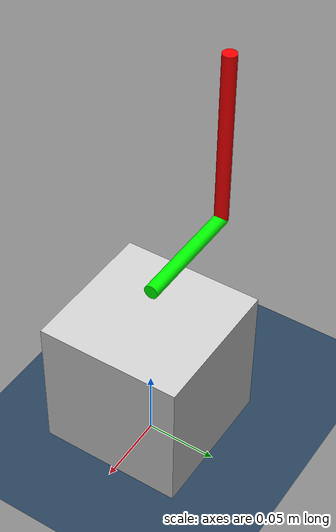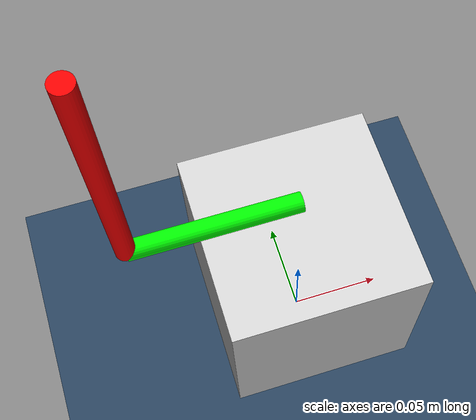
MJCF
<!-- from: https://github.com/alirezarezaeei78/rotary-inverted-pendulum/tree/main/Mojuco_Rotary_Inverted_Pendulum -->
<mujoco>

	<visual>
		<headlight diffuse="0.6 0.6 0.6" ambient="0.3 0.3 0.3" specular="0 0 0"/>
		<rgba haze="0.15 0.25 0.35 1"/>
		<global azimuth="-120" elevation="-20"/>
	</visual>
	<compiler inertiafromgeom="true"/>

  <asset>
    <texture type="skybox" builtin="gradient" rgb1="0.3 0.5 0.7" rgb2="0 0 0" width="512" height="3072"/>
    <texture type="2d" name="groundplane" builtin="checker" mark="edge" rgb1="0.2 0.3 0.4" rgb2="0.1 0.2 0.3"
      markrgb="0.8 0.8 0.8" width="300" height="300"/>
    <material name="groundplane" texture="groundplane" texuniform="true" texrepeat="5 5" reflectance="0.2"/>
  </asset>

  <option gravity="0 0 -9.81" integrator="RK4" timestep="0.001"/>

  <worldbody>
    <light pos="0 0 1.5" dir="0 0 -1" directional="true"/>
    <geom name="floor" size="0 0 0.05" type="plane" material="groundplane"/>

    <!-- Add a stand for the first link -->
    <body name="stand" pos="0 0 0.06">
      <geom type="box" size="0.05 0.05 0.05" rgba="0.8 0.8 0.8 1" mass="1"/>

      <body name="arm" pos="-0.0425 0.0 0.07" euler="0 90 0">
        <joint name="joint0" type="hinge" axis="-1 0 0" pos="0 0 0.0425" range="-135 135" limited="true"
              damping="0.00005" frictionloss="0.00005"/>
        <geom type="cylinder" size="0.005 0.0425" rgba="0 1 0 1" mass="0.095"/>

        <body name="pend" pos="-0.0645 0.0 -0.0425" euler="90 90 0">
          <joint name="joint1" type="hinge" axis="0 -1 0" pos="0 0 0.0645"
              damping="0.0000" frictionloss="0.00005"/>
          <geom type="cylinder" size="0.005 0.0645" rgba="1 0 0 1" mass="0.024"/>
        </body>
      </body>
    </body>
  </worldbody>

  <actuator>
    <motor name="torque0" joint="joint0" gear="1" ctrllimited="true" ctrlrange="-0.085 0.085"/>
  </actuator>

  <sensor>
    <jointpos name="j1" joint="joint0"/>
    <jointpos name="j2" joint="joint1"/>
  </sensor>
</mujoco>
